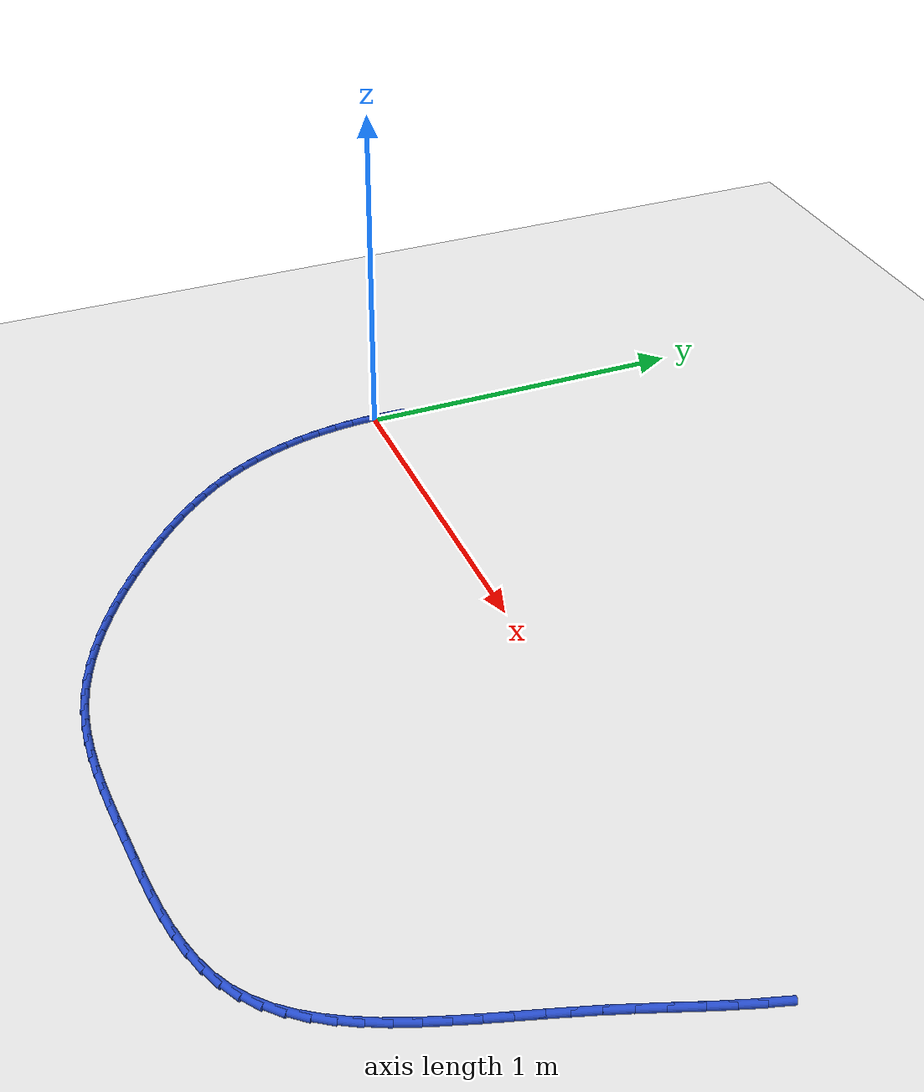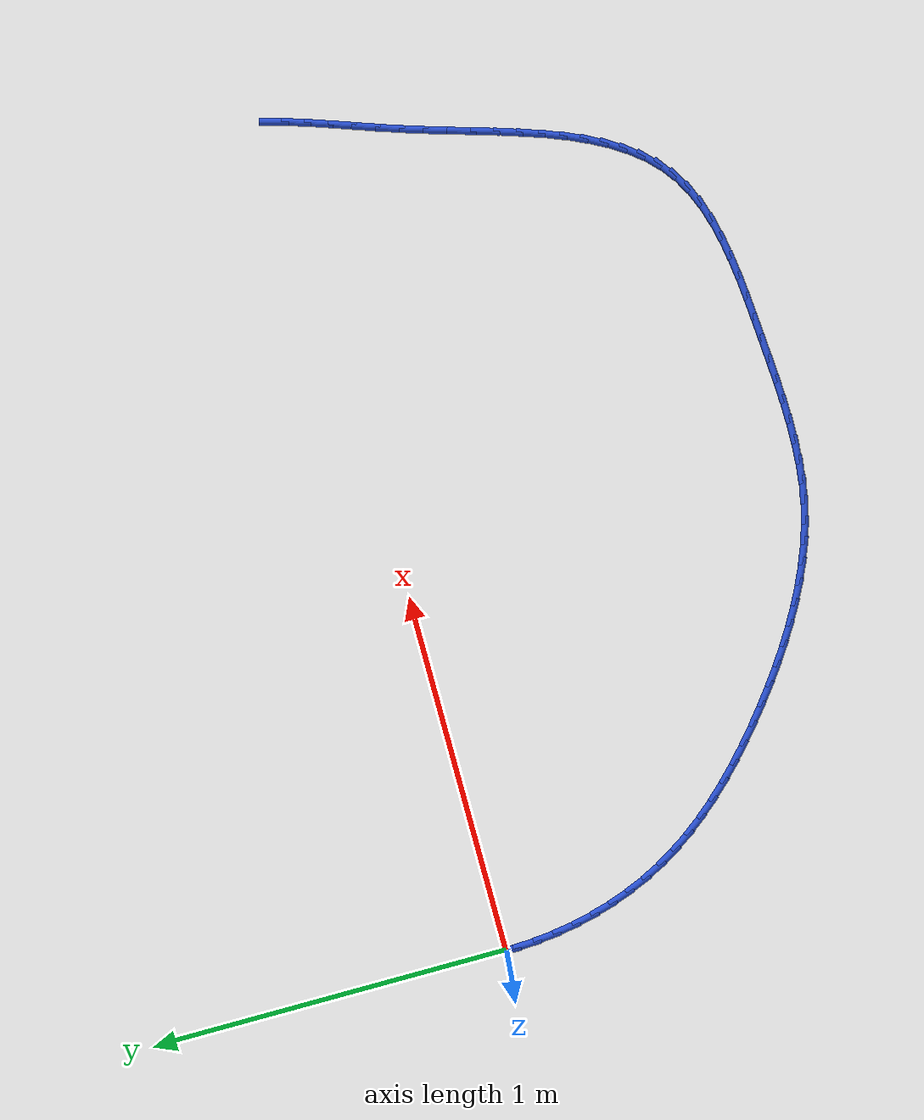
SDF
<sdf version="1.6">
 <world name="default">
  <model name="ground_plane">
   <static>1</static>
   <link name="link">
    <collision name="collision">
     <geometry><plane><normal>0 0 1</normal><size>100 100</size></plane></geometry>
     <surface><friction><ode><mu>100</mu><mu2>50</mu2></ode></friction></surface>
    </collision>
    <visual name="visual">
     <cast_shadows>0</cast_shadows>
     <geometry><plane><normal>0 0 1</normal><size>100 100</size></plane></geometry>
     <material>
      <script><uri>file://media/materials/scripts/gazebo.material</uri><name>Gazebo/WhiteGlow</name></script>
     </material>
    </visual>
   </link>
  </model>
  <model name="line">
   <link name="link_0">
    <pose>-3.8163916471489756e-17 -4.163336342344337e-17 0.01 0 1.57 1.5507426402267968</pose>
    <collision name="collision">
     <geometry><cylinder><radius>0.01</radius><length>0.08</length></cylinder></geometry>
    </collision>
    <visual name="visual">
     <material>
      <script><name>Gazebo/Blue</name><uri>file://media/materials/scripts/gazebo.material</uri></script>
     </material>
     <geometry><cylinder><radius>0.01</radius><length>0.08</length></cylinder></geometry>
    </visual>
   </link>
   <link name="link_67">
    <pose>2.3480346581451306 0.010561521279453537 0.01 0 1.57 1.282617856456668</pose>
    <collision name="collision">
     <geometry><cylinder><radius>0.01</radius><length>0.08</length></cylinder></geometry>
    </collision>
    <visual name="visual">
     <material>
      <script><name>Gazebo/Blue</name><uri>file://media/materials/scripts/gazebo.material</uri></script>
     </material>
     <geometry><cylinder><radius>0.01</radius><length>0.08</length></cylinder></geometry>
    </visual>
   </link>
   <link name="link_68">
    <pose>2.330881250224446 -0.047305093757457714 0.01 0 1.57 1.2523065538104043</pose>
    <collision name="collision">
     <geometry><cylinder><radius>0.01</radius><length>0.08</length></cylinder></geometry>
    </collision>
    <visual name="visual">
     <material>
      <script><name>Gazebo/Blue</name><uri>file://media/materials/scripts/gazebo.material</uri></script>
     </material>
     <geometry><cylinder><radius>0.01</radius><length>0.08</length></cylinder></geometry>
    </visual>
   </link>
   <link name="link_69">
    <pose>2.31136593727821 -0.10649367310155125 0.01 0 1.57 1.2350952243983047</pose>
    <collision name="collision">
     <geometry><cylinder><radius>0.01</radius><length>0.08</length></cylinder></geometry>
    </collision>
    <visual name="visual">
     <material>
      <script><name>Gazebo/Blue</name><uri>file://media/materials/scripts/gazebo.material</uri></script>
     </material>
     <geometry><cylinder><radius>0.01</radius><length>0.08</length></cylinder></geometry>
    </visual>
   </link>
   <link name="link_70">
    <pose>2.290332042961865 -0.16677871102707698 0.01 0 1.57 1.22969191194665</pose>
    <collision name="collision">
     <geometry><cylinder><radius>0.01</radius><length>0.08</length></cylinder></geometry>
    </collision>
    <visual name="visual">
     <material>
      <script><name>Gazebo/Blue</name><uri>file://media/materials/scripts/gazebo.material</uri></script>
     </material>
     <geometry><cylinder><radius>0.01</radius><length>0.08</length></cylinder></geometry>
    </visual>
   </link>
   <link name="link_71">
    <pose>2.268622890930848 -0.22793470180828226 0.01 0 1.57 1.2354110383310426</pose>
    <collision name="collision">
     <geometry><cylinder><radius>0.01</radius><length>0.08</length></cylinder></geometry>
    </collision>
    <visual name="visual">
     <material>
      <script><name>Gazebo/Blue</name><uri>file://media/materials/scripts/gazebo.material</uri></script>
     </material>
     <geometry><cylinder><radius>0.01</radius><length>0.08</length></cylinder></geometry>
    </visual>
   </link>
   <link name="link_72">
    <pose>2.247081804840598 -0.2897361397194169 0.01 0 1.57 1.251639813310058</pose>
    <collision name="collision">
     <geometry><cylinder><radius>0.01</radius><length>0.08</length></cylinder></geometry>
    </collision>
    <visual name="visual">
     <material>
      <script><name>Gazebo/Blue</name><uri>file://media/materials/scripts/gazebo.material</uri></script>
     </material>
     <geometry><cylinder><radius>0.01</radius><length>0.08</length></cylinder></geometry>
    </visual>
   </link>
   <link name="link_73">
    <pose>2.226522069818589 -0.3519528569142806 0.01 0 1.57 1.268890830604126</pose>
    <collision name="collision">
     <geometry><cylinder><radius>0.01</radius><length>0.08</length></cylinder></geometry>
    </collision>
    <visual name="visual">
     <material>
      <script><name>Gazebo/Blue</name><uri>file://media/materials/scripts/gazebo.material</uri></script>
     </material>
     <geometry><cylinder><radius>0.01</radius><length>0.08</length></cylinder></geometry>
    </visual>
   </link>
   <link name="link_74">
    <pose>2.207119378528228 -0.41425572820532996 0.01 0 1.57 1.2780123756928239</pose>
    <collision name="collision">
     <geometry><cylinder><radius>0.01</radius><length>0.08</length></cylinder></geometry>
    </collision>
    <visual name="visual">
     <material>
      <script><name>Gazebo/Blue</name><uri>file://media/materials/scripts/gazebo.material</uri></script>
     </material>
     <geometry><cylinder><radius>0.01</radius><length>0.08</length></cylinder></geometry>
    </visual>
   </link>
   <link name="link_75">
    <pose>2.188440104381289 -0.4762210591988785 0.01 0 1.57 1.2785336794585689</pose>
    <collision name="collision">
     <geometry><cylinder><radius>0.01</radius><length>0.08</length></cylinder></geometry>
    </collision>
    <visual name="visual">
     <material>
      <script><name>Gazebo/Blue</name><uri>file://media/materials/scripts/gazebo.material</uri></script>
     </material>
     <geometry><cylinder><radius>0.01</radius><length>0.08</length></cylinder></geometry>
    </visual>
   </link>
   <link name="link_76">
    <pose>2.1700262405510493 -0.5374213715738559 0.01 0 1.57 1.2701292731709128</pose>
    <collision name="collision">
     <geometry><cylinder><radius>0.01</radius><length>0.08</length></cylinder></geometry>
    </collision>
    <visual name="visual">
     <material>
      <script><name>Gazebo/Blue</name><uri>file://media/materials/scripts/gazebo.material</uri></script>
     </material>
     <geometry><cylinder><radius>0.01</radius><length>0.08</length></cylinder></geometry>
    </visual>
   </link>
   <link name="link_77">
    <pose>2.15141978021079 -0.5974291870091943 0.01 0 1.57 1.2522174894176923</pose>
    <collision name="collision">
     <geometry><cylinder><radius>0.01</radius><length>0.08</length></cylinder></geometry>
    </collision>
    <visual name="visual">
     <material>
      <script><name>Gazebo/Blue</name><uri>file://media/materials/scripts/gazebo.material</uri></script>
     </material>
     <geometry><cylinder><radius>0.01</radius><length>0.08</length></cylinder></geometry>
    </visual>
   </link>
   <link name="link_78">
    <pose>2.1321627165337884 -0.6558170271838261 0.01 0 1.57 1.2239350768184623</pose>
    <collision name="collision">
     <geometry><cylinder><radius>0.01</radius><length>0.08</length></cylinder></geometry>
    </collision>
    <visual name="visual">
     <material>
      <script><name>Gazebo/Blue</name><uri>file://media/materials/scripts/gazebo.material</uri></script>
     </material>
     <geometry><cylinder><radius>0.01</radius><length>0.08</length></cylinder></geometry>
    </visual>
   </link>
   <link name="link_79">
    <pose>2.1117970426933246 -0.7121574137766808 0.01 0 1.57 1.1841259313940056</pose>
    <collision name="collision">
     <geometry><cylinder><radius>0.01</radius><length>0.08</length></cylinder></geometry>
    </collision>
    <visual name="visual">
     <material>
      <script><name>Gazebo/Blue</name><uri>file://media/materials/scripts/gazebo.material</uri></script>
     </material>
     <geometry><cylinder><radius>0.01</radius><length>0.08</length></cylinder></geometry>
    </visual>
   </link>
   <link name="link_80">
    <pose>2.089864751862678 -0.766022868466691 0.01 0 1.57 1.131366594185637</pose>
    <collision name="collision">
     <geometry><cylinder><radius>0.01</radius><length>0.08</length></cylinder></geometry>
    </collision>
    <visual name="visual">
     <material>
      <script><name>Gazebo/Blue</name><uri>file://media/materials/scripts/gazebo.material</uri></script>
     </material>
     <geometry><cylinder><radius>0.01</radius><length>0.08</length></cylinder></geometry>
    </visual>
   </link>
   <link name="link_81">
    <pose>2.0659078372151267 -0.8169859129327879 0.01 0 1.57 1.0640719950239452</pose>
    <collision name="collision">
     <geometry><cylinder><radius>0.01</radius><length>0.08</length></cylinder></geometry>
    </collision>
    <visual name="visual">
     <material>
      <script><name>Gazebo/Blue</name><uri>file://media/materials/scripts/gazebo.material</uri></script>
     </material>
     <geometry><cylinder><radius>0.01</radius><length>0.08</length></cylinder></geometry>
    </visual>
   </link>
   <link name="link_82">
    <pose>2.03946829192395 -0.8646190688539029 0.01 0 1.57 0.9807506838783492</pose>
    <collision name="collision">
     <geometry><cylinder><radius>0.01</radius><length>0.08</length></cylinder></geometry>
    </collision>
    <visual name="visual">
     <material>
      <script><name>Gazebo/Blue</name><uri>file://media/materials/scripts/gazebo.material</uri></script>
     </material>
     <geometry><cylinder><radius>0.01</radius><length>0.08</length></cylinder></geometry>
    </visual>
   </link>
   <link name="link_83">
    <pose>2.0100881091624263 -0.908494857908968 0.01 0 1.57 0.8804898141448426</pose>
    <collision name="collision">
     <geometry><cylinder><radius>0.01</radius><length>0.08</length></cylinder></geometry>
    </collision>
    <visual name="visual">
     <material>
      <script><name>Gazebo/Blue</name><uri>file://media/materials/scripts/gazebo.material</uri></script>
     </material>
     <geometry><cylinder><radius>0.01</radius><length>0.08</length></cylinder></geometry>
    </visual>
   </link>
   <link name="link_84">
    <pose>1.9773092821038372 -0.948185801776914 0.01 0 1.57 0.7636923433998084</pose>
    <collision name="collision">
     <geometry><cylinder><radius>0.01</radius><length>0.08</length></cylinder></geometry>
    </collision>
    <visual name="visual">
     <material>
      <script><name>Gazebo/Blue</name><uri>file://media/materials/scripts/gazebo.material</uri></script>
     </material>
     <geometry><cylinder><radius>0.01</radius><length>0.08</length></cylinder></geometry>
    </visual>
   </link>
   <link name="link_85">
    <pose>1.9406738039214584 -0.9832644221366721 0.01 0 1.57 0.6328872740789407</pose>
    <collision name="collision">
     <geometry><cylinder><radius>0.01</radius><length>0.08</length></cylinder></geometry>
    </collision>
    <visual name="visual">
     <material>
      <script><name>Gazebo/Blue</name><uri>file://media/materials/scripts/gazebo.material</uri></script>
     </material>
     <geometry><cylinder><radius>0.01</radius><length>0.08</length></cylinder></geometry>
    </visual>
   </link>
   <link name="link_86">
    <pose>1.8997236677885705 -1.0133032406671747 0.01 0 1.57 0.4970385546555453</pose>
    <collision name="collision">
     <geometry><cylinder><radius>0.01</radius><length>0.08</length></cylinder></geometry>
    </collision>
    <visual name="visual">
     <material>
      <script><name>Gazebo/Blue</name><uri>file://media/materials/scripts/gazebo.material</uri></script>
     </material>
     <geometry><cylinder><radius>0.01</radius><length>0.08</length></cylinder></geometry>
    </visual>
   </link>
   <link name="link_87">
    <pose>1.8541545255872915 -1.0380228330083174 0.01 0 1.57 0.3796308341414466</pose>
    <collision name="collision">
     <geometry><cylinder><radius>0.01</radius><length>0.08</length></cylinder></geometry>
    </collision>
    <visual name="visual">
     <material>
      <script><name>Gazebo/Blue</name><uri>file://media/materials/scripts/gazebo.material</uri></script>
     </material>
     <geometry><cylinder><radius>0.01</radius><length>0.08</length></cylinder></geometry>
    </visual>
   </link>
   <link name="link_88">
    <pose>1.8044141656620658 -1.05786847685741 0.01 0 1.57 0.285728042936605</pose>
    <collision name="collision">
     <geometry><cylinder><radius>0.01</radius><length>0.08</length></cylinder></geometry>
    </collision>
    <visual name="visual">
     <material>
      <script><name>Gazebo/Blue</name><uri>file://media/materials/scripts/gazebo.material</uri></script>
     </material>
     <geometry><cylinder><radius>0.01</radius><length>0.08</length></cylinder></geometry>
    </visual>
   </link>
   <link name="link_89">
    <pose>1.7511801456265401 -1.0735068382773831 0.01 0 1.57 0.2125781255456815</pose>
    <collision name="collision">
     <geometry><cylinder><radius>0.01</radius><length>0.08</length></cylinder></geometry>
    </collision>
    <visual name="visual">
     <material>
      <script><name>Gazebo/Blue</name><uri>file://media/materials/scripts/gazebo.material</uri></script>
     </material>
     <geometry><cylinder><radius>0.01</radius><length>0.08</length></cylinder></geometry>
    </visual>
   </link>
   <link name="link_90">
    <pose>1.69513008033102 -1.085604638480103 0.01 0 1.57 0.1572105286833833</pose>
    <collision name="collision">
     <geometry><cylinder><radius>0.01</radius><length>0.08</length></cylinder></geometry>
    </collision>
    <visual name="visual">
     <material>
      <script><name>Gazebo/Blue</name><uri>file://media/materials/scripts/gazebo.material</uri></script>
     </material>
     <geometry><cylinder><radius>0.01</radius><length>0.08</length></cylinder></geometry>
    </visual>
   </link>
   <link name="link_91">
    <pose>1.6369415846258097 -1.0948285986774355 0.01 0 1.57 0.11709676226920934</pose>
    <collision name="collision">
     <geometry><cylinder><radius>0.01</radius><length>0.08</length></cylinder></geometry>
    </collision>
    <visual name="visual">
     <material>
      <script><name>Gazebo/Blue</name><uri>file://media/materials/scripts/gazebo.material</uri></script>
     </material>
     <geometry><cylinder><radius>0.01</radius><length>0.08</length></cylinder></geometry>
    </visual>
   </link>
   <link name="link_92">
    <pose>1.5772922733612165 -1.101845440081246 0.01 0 1.57 0.09037397227678563</pose>
    <collision name="collision">
     <geometry><cylinder><radius>0.01</radius><length>0.08</length></cylinder></geometry>
    </collision>
    <visual name="visual">
     <material>
      <script><name>Gazebo/Blue</name><uri>file://media/materials/scripts/gazebo.material</uri></script>
     </material>
     <geometry><cylinder><radius>0.01</radius><length>0.08</length></cylinder></geometry>
    </visual>
   </link>
   <link name="link_93">
    <pose>1.5168597613875456 -1.1073218839034014 0.01 0 1.57 0.07588492499050033</pose>
    <collision name="collision">
     <geometry><cylinder><radius>0.01</radius><length>0.08</length></cylinder></geometry>
    </collision>
    <visual name="visual">
     <material>
      <script><name>Gazebo/Blue</name><uri>file://media/materials/scripts/gazebo.material</uri></script>
     </material>
     <geometry><cylinder><radius>0.01</radius><length>0.08</length></cylinder></geometry>
    </visual>
   </link>
   <link name="link_94">
    <pose>1.4563216635551006 -1.1119246513557663 0.01 0 1.57 0.07240214545061828</pose>
    <collision name="collision">
     <geometry><cylinder><radius>0.01</radius><length>0.08</length></cylinder></geometry>
    </collision>
    <visual name="visual">
     <material>
      <script><name>Gazebo/Blue</name><uri>file://media/materials/scripts/gazebo.material</uri></script>
     </material>
     <geometry><cylinder><radius>0.01</radius><length>0.08</length></cylinder></geometry>
    </visual>
   </link>
   <link name="link_95">
    <pose>1.3963280225317296 -1.1162759255666574 0.01 0 1.57 0.06910570956560247</pose>
    <collision name="collision">
     <geometry><cylinder><radius>0.01</radius><length>0.08</length></cylinder></geometry>
    </collision>
    <visual name="visual">
     <material>
      <script><name>Gazebo/Blue</name><uri>file://media/materials/scripts/gazebo.material</uri></script>
     </material>
     <geometry><cylinder><radius>0.01</radius><length>0.08</length></cylinder></geometry>
    </visual>
   </link>
   <link name="link_96">
    <pose>1.3371417569233648 -1.1203725578162986 0.01 0 1.57 0.05777058107400581</pose>
    <collision name="collision">
     <geometry><cylinder><radius>0.01</radius><length>0.08</length></cylinder></geometry>
    </collision>
    <visual name="visual">
     <material>
      <script><name>Gazebo/Blue</name><uri>file://media/materials/scripts/gazebo.material</uri></script>
     </material>
     <geometry><cylinder><radius>0.01</radius><length>0.08</length></cylinder></geometry>
    </visual>
   </link>
   <link name="link_97">
    <pose>1.2787402731216313 -1.123750203871143 0.01 0 1.57 0.03786073664523429</pose>
    <collision name="collision">
     <geometry><cylinder><radius>0.01</radius><length>0.08</length></cylinder></geometry>
    </collision>
    <visual name="visual">
     <material>
      <script><name>Gazebo/Blue</name><uri>file://media/materials/scripts/gazebo.material</uri></script>
     </material>
     <geometry><cylinder><radius>0.01</radius><length>0.08</length></cylinder></geometry>
    </visual>
   </link>
   <link name="link_98">
    <pose>1.2210943200735678 -1.125933765549397 0.01 0 1.57 0.009036684293130188</pose>
    <collision name="collision">
     <geometry><cylinder><radius>0.01</radius><length>0.08</length></cylinder></geometry>
    </collision>
    <visual name="visual">
     <material>
      <script><name>Gazebo/Blue</name><uri>file://media/materials/scripts/gazebo.material</uri></script>
     </material>
     <geometry><cylinder><radius>0.01</radius><length>0.08</length></cylinder></geometry>
    </visual>
   </link>
   <link name="link_99">
    <pose>1.16417464672621 -1.1264481446692662 0.01 0 1.57 -0.028982009907625953</pose>
    <collision name="collision">
     <geometry><cylinder><radius>0.01</radius><length>0.08</length></cylinder></geometry>
    </collision>
    <visual name="visual">
     <material>
      <script><name>Gazebo/Blue</name><uri>file://media/materials/scripts/gazebo.material</uri></script>
     </material>
     <geometry><cylinder><radius>0.01</radius><length>0.08</length></cylinder></geometry>
    </visual>
   </link>
   <link name="link_100">
    <pose>1.1079520020265987 -1.1248182430489564 0.01 0 1.57 -0.07633935688201351</pose>
    <collision name="collision">
     <geometry><cylinder><radius>0.01</radius><length>0.08</length></cylinder></geometry>
    </collision>
    <visual name="visual">
     <material>
      <script><name>Gazebo/Blue</name><uri>file://media/materials/scripts/gazebo.material</uri></script>
     </material>
     <geometry><cylinder><radius>0.01</radius><length>0.08</length></cylinder></geometry>
    </visual>
   </link>
   <link name="link_101">
    <pose>1.052397134921771 -1.1205689625066735 0.01 0 1.57 -0.1329375902093642</pose>
    <collision name="collision">
     <geometry><cylinder><radius>0.01</radius><length>0.08</length></cylinder></geometry>
    </collision>
    <visual name="visual">
     <material>
      <script><name>Gazebo/Blue</name><uri>file://media/materials/scripts/gazebo.material</uri></script>
     </material>
     <geometry><cylinder><radius>0.01</radius><length>0.08</length></cylinder></geometry>
    </visual>
   </link>
   <link name="link_102">
    <pose>0.9974807943587636 -1.1132252048606237 0.01 0 1.57 -0.19824073081018273</pose>
    <collision name="collision">
     <geometry><cylinder><radius>0.01</radius><length>0.08</length></cylinder></geometry>
    </collision>
    <visual name="visual">
     <material>
      <script><name>Gazebo/Blue</name><uri>file://media/materials/scripts/gazebo.material</uri></script>
     </material>
     <geometry><cylinder><radius>0.01</radius><length>0.08</length></cylinder></geometry>
    </visual>
   </link>
   <link name="link_103">
    <pose>0.9431741603005644 -1.102316135641857 0.01 0 1.57 -0.2667039501905822</pose>
    <collision name="collision">
     <geometry><cylinder><radius>0.01</radius><length>0.08</length></cylinder></geometry>
    </collision>
    <visual name="visual">
     <material>
      <script><name>Gazebo/Blue</name><uri>file://media/materials/scripts/gazebo.material</uri></script>
     </material>
     <geometry><cylinder><radius>0.01</radius><length>0.08</length></cylinder></geometry>
    </visual>
   </link>
   <link name="link_104">
    <pose>0.8894761338996335 -1.087645145017893 0.01 0 1.57 -0.3304017387294075</pose>
    <collision name="collision">
     <geometry><cylinder><radius>0.01</radius><length>0.08</length></cylinder></geometry>
    </collision>
    <visual name="visual">
     <material>
      <script><name>Gazebo/Blue</name><uri>file://media/materials/scripts/gazebo.material</uri></script>
     </material>
     <geometry><cylinder><radius>0.01</radius><length>0.08</length></cylinder></geometry>
    </visual>
   </link>
   <link name="link_105">
    <pose>0.8364296893559856 -1.069451604283767 0.01 0 1.57 -0.3886922839778396</pose>
    <collision name="collision">
     <geometry><cylinder><radius>0.01</radius><length>0.08</length></cylinder></geometry>
    </collision>
    <visual name="visual">
     <material>
      <script><name>Gazebo/Blue</name><uri>file://media/materials/scripts/gazebo.material</uri></script>
     </material>
     <geometry><cylinder><radius>0.01</radius><length>0.08</length></cylinder></geometry>
    </visual>
   </link>
   <link name="link_106">
    <pose>0.7840817242811291 -1.0480136960593915 0.01 0 1.57 -0.44175299828991105</pose>
    <collision name="collision">
     <geometry><cylinder><radius>0.01</radius><length>0.08</length></cylinder></geometry>
    </collision>
    <visual name="visual">
     <material>
      <script><name>Gazebo/Blue</name><uri>file://media/materials/scripts/gazebo.material</uri></script>
     </material>
     <geometry><cylinder><radius>0.01</radius><length>0.08</length></cylinder></geometry>
    </visual>
   </link>
   <link name="link_107">
    <pose>0.7324791362865721 -1.0236096029646795 0.01 0 1.57 -0.48985407042968315</pose>
    <collision name="collision">
     <geometry><cylinder><radius>0.01</radius><length>0.08</length></cylinder></geometry>
    </collision>
    <visual name="visual">
     <material>
      <script><name>Gazebo/Blue</name><uri>file://media/materials/scripts/gazebo.material</uri></script>
     </material>
     <geometry><cylinder><radius>0.01</radius><length>0.08</length></cylinder></geometry>
    </visual>
   </link>
   <link name="link_108">
    <pose>0.6816688229838248 -0.9965175076195443 0.01 0 1.57 -0.5333152403753757</pose>
    <collision name="collision">
     <geometry><cylinder><radius>0.01</radius><length>0.08</length></cylinder></geometry>
    </collision>
    <visual name="visual">
     <material>
      <script><name>Gazebo/Blue</name><uri>file://media/materials/scripts/gazebo.material</uri></script>
     </material>
     <geometry><cylinder><radius>0.01</radius><length>0.08</length></cylinder></geometry>
    </visual>
   </link>
   <link name="link_109">
    <pose>0.6316976819843954 -0.967015592643899 0.01 0 1.57 -0.5724734974950213</pose>
    <collision name="collision">
     <geometry><cylinder><radius>0.01</radius><length>0.08</length></cylinder></geometry>
    </collision>
    <visual name="visual">
     <material>
      <script><name>Gazebo/Blue</name><uri>file://media/materials/scripts/gazebo.material</uri></script>
     </material>
     <geometry><cylinder><radius>0.01</radius><length>0.08</length></cylinder></geometry>
    </visual>
   </link>
   <link name="link_110">
    <pose>0.5826126108997914 -0.9353820406576553 0.01 0 1.57 -0.6076605054501492</pose>
    <collision name="collision">
     <geometry><cylinder><radius>0.01</radius><length>0.08</length></cylinder></geometry>
    </collision>
    <visual name="visual">
     <material>
      <script><name>Gazebo/Blue</name><uri>file://media/materials/scripts/gazebo.material</uri></script>
     </material>
     <geometry><cylinder><radius>0.01</radius><length>0.08</length></cylinder></geometry>
    </visual>
   </link>
   <link name="link_111">
    <pose>0.5344605073415234 -0.9018950342807275 0.01 0 1.57 -0.6391877394706942</pose>
    <collision name="collision">
     <geometry><cylinder><radius>0.01</radius><length>0.08</length></cylinder></geometry>
    </collision>
    <visual name="visual">
     <material>
      <script><name>Gazebo/Blue</name><uri>file://media/materials/scripts/gazebo.material</uri></script>
     </material>
     <geometry><cylinder><radius>0.01</radius><length>0.08</length></cylinder></geometry>
    </visual>
   </link>
   <link name="link_112">
    <pose>0.48728826892109917 -0.8668327561330278 0.01 0 1.57 -0.667337232595375</pose>
    <collision name="collision">
     <geometry><cylinder><radius>0.01</radius><length>0.08</length></cylinder></geometry>
    </collision>
    <visual name="visual">
     <material>
      <script><name>Gazebo/Blue</name><uri>file://media/materials/scripts/gazebo.material</uri></script>
     </material>
     <geometry><cylinder><radius>0.01</radius><length>0.08</length></cylinder></geometry>
    </visual>
   </link>
   <link name="link_113">
    <pose>0.44114279325002764 -0.8304733888344694 0.01 0 1.57 -0.6930037655890198</pose>
    <collision name="collision">
     <geometry><cylinder><radius>0.01</radius><length>0.08</length></cylinder></geometry>
    </collision>
    <visual name="visual">
     <material>
      <script><name>Gazebo/Blue</name><uri>file://media/materials/scripts/gazebo.material</uri></script>
     </material>
     <geometry><cylinder><radius>0.01</radius><length>0.08</length></cylinder></geometry>
    </visual>
   </link>
   <link name="link_114">
    <pose>0.39608902585560973 -0.793060806143797 0.01 0 1.57 -0.7212193511468055</pose>
    <collision name="collision">
     <geometry><cylinder><radius>0.01</radius><length>0.08</length></cylinder></geometry>
    </collision>
    <visual name="visual">
     <material>
      <script><name>Gazebo/Blue</name><uri>file://media/materials/scripts/gazebo.material</uri></script>
     </material>
     <geometry><cylinder><radius>0.01</radius><length>0.08</length></cylinder></geometry>
    </visual>
   </link>
   <link name="link_115">
    <pose>0.3523263001113379 -0.7545834122125937 0.01 0 1.57 -0.7543548193661713</pose>
    <collision name="collision">
     <geometry><cylinder><radius>0.01</radius><length>0.08</length></cylinder></geometry>
    </collision>
    <visual name="visual">
     <material>
      <script><name>Gazebo/Blue</name><uri>file://media/materials/scripts/gazebo.material</uri></script>
     </material>
     <geometry><cylinder><radius>0.01</radius><length>0.08</length></cylinder></geometry>
    </visual>
   </link>
   <link name="link_116">
    <pose>0.31011457693886213 -0.7149143589851249 0.01 0 1.57 -0.7926184035523761</pose>
    <collision name="collision">
     <geometry><cylinder><radius>0.01</radius><length>0.08</length></cylinder></geometry>
    </collision>
    <visual name="visual">
     <material>
      <script><name>Gazebo/Blue</name><uri>file://media/materials/scripts/gazebo.material</uri></script>
     </material>
     <geometry><cylinder><radius>0.01</radius><length>0.08</length></cylinder></geometry>
    </visual>
   </link>
   <link name="link_117">
    <pose>0.2697141117959508 -0.6739262384961893 0.01 0 1.57 -0.8361898016919611</pose>
    <collision name="collision">
     <geometry><cylinder><radius>0.01</radius><length>0.08</length></cylinder></geometry>
    </collision>
    <visual name="visual">
     <material>
      <script><name>Gazebo/Blue</name><uri>file://media/materials/scripts/gazebo.material</uri></script>
     </material>
     <geometry><cylinder><radius>0.01</radius><length>0.08</length></cylinder></geometry>
    </visual>
   </link>
   <link name="link_118">
    <pose>0.23138516014037244 -0.6314916427805856 0.01 0 1.57 -0.88519960219251</pose>
    <collision name="collision">
     <geometry><cylinder><radius>0.01</radius><length>0.08</length></cylinder></geometry>
    </collision>
    <visual name="visual">
     <material>
      <script><name>Gazebo/Blue</name><uri>file://media/materials/scripts/gazebo.material</uri></script>
     </material>
     <geometry><cylinder><radius>0.01</radius><length>0.08</length></cylinder></geometry>
    </visual>
   </link>
   <link name="link_119">
    <pose>0.19538797742989722 -0.5874831638731142 0.01 0 1.57 -0.9396903453968765</pose>
    <collision name="collision">
     <geometry><cylinder><radius>0.01</radius><length>0.08</length></cylinder></geometry>
    </collision>
    <visual name="visual">
     <material>
      <script><name>Gazebo/Blue</name><uri>file://media/materials/scripts/gazebo.material</uri></script>
     </material>
     <geometry><cylinder><radius>0.01</radius><length>0.08</length></cylinder></geometry>
    </visual>
   </link>
   <link name="link_120">
    <pose>0.1619828191222938 -0.5417733938085743 0.01 0 1.57 -0.9995714708774518</pose>
    <collision name="collision">
     <geometry><cylinder><radius>0.01</radius><length>0.08</length></cylinder></geometry>
    </collision>
    <visual name="visual">
     <material>
      <script><name>Gazebo/Blue</name><uri>file://media/materials/scripts/gazebo.material</uri></script>
     </material>
     <geometry><cylinder><radius>0.01</radius><length>0.08</length></cylinder></geometry>
    </visual>
   </link>
   <link name="link_121">
    <pose>0.13142994067533115 -0.4942349246217649 0.01 0 1.57 -1.0644929722090808</pose>
    <collision name="collision">
     <geometry><cylinder><radius>0.01</radius><length>0.08</length></cylinder></geometry>
    </collision>
    <visual name="visual">
     <material>
      <script><name>Gazebo/Blue</name><uri>file://media/materials/scripts/gazebo.material</uri></script>
     </material>
     <geometry><cylinder><radius>0.01</radius><length>0.08</length></cylinder></geometry>
    </visual>
   </link>
   <link name="link_122">
    <pose>0.10398662611041729 -0.44474430241351337 0.01 0 1.57 -1.1309671815712008</pose>
    <collision name="collision">
     <geometry><cylinder><radius>0.01</radius><length>0.08</length></cylinder></geometry>
    </collision>
    <visual name="visual">
     <material>
      <script><name>Gazebo/Blue</name><uri>file://media/materials/scripts/gazebo.material</uri></script>
     </material>
     <geometry><cylinder><radius>0.01</radius><length>0.08</length></cylinder></geometry>
    </visual>
   </link>
   <link name="link_123">
    <pose>0.07979384573965168 -0.3933328509849386 0.01 0 1.57 -1.1949560473798078</pose>
    <collision name="collision">
     <geometry><cylinder><radius>0.01</radius><length>0.08</length></cylinder></geometry>
    </collision>
    <visual name="visual">
     <material>
      <script><name>Gazebo/Blue</name><uri>file://media/materials/scripts/gazebo.material</uri></script>
     </material>
     <geometry><cylinder><radius>0.01</radius><length>0.08</length></cylinder></geometry>
    </visual>
   </link>
   <link name="link_124">
    <pose>0.058841010316505266 -0.3402335732004596 0.01 0 1.57 -1.2564322082683965</pose>
    <collision name="collision">
     <geometry><cylinder><radius>0.01</radius><length>0.08</length></cylinder></geometry>
    </collision>
    <visual name="visual">
     <material>
      <script><name>Gazebo/Blue</name><uri>file://media/materials/scripts/gazebo.material</uri></script>
     </material>
     <geometry><cylinder><radius>0.01</radius><length>0.08</length></cylinder></geometry>
    </visual>
   </link>
   <link name="link_125">
    <pose>0.04110735481102012 -0.28569301275615483 0.01 0 1.57 -1.3156878975455126</pose>
    <collision name="collision">
     <geometry><cylinder><radius>0.01</radius><length>0.08</length></cylinder></geometry>
    </collision>
    <visual name="visual">
     <material>
      <script><name>Gazebo/Blue</name><uri>file://media/materials/scripts/gazebo.material</uri></script>
     </material>
     <geometry><cylinder><radius>0.01</radius><length>0.08</length></cylinder></geometry>
    </visual>
   </link>
   <link name="link_126">
    <pose>0.026572114193238537 -0.22995771334810194 0.01 0 1.57 -1.3730463980285403</pose>
    <collision name="collision">
     <geometry><cylinder><radius>0.01</radius><length>0.08</length></cylinder></geometry>
    </collision>
    <visual name="visual">
     <material>
      <script><name>Gazebo/Blue</name><uri>file://media/materials/scripts/gazebo.material</uri></script>
     </material>
     <geometry><cylinder><radius>0.01</radius><length>0.08</length></cylinder></geometry>
    </visual>
   </link>
   <link name="link_127">
    <pose>0.015214523433203411 -0.1732742186723817 0.01 0 1.57 -1.4288509788598336</pose>
    <collision name="collision">
     <geometry><cylinder><radius>0.01</radius><length>0.08</length></cylinder></geometry>
    </collision>
    <visual name="visual">
     <material>
      <script><name>Gazebo/Blue</name><uri>file://media/materials/scripts/gazebo.material</uri></script>
     </material>
     <geometry><cylinder><radius>0.01</radius><length>0.08</length></cylinder></geometry>
    </visual>
   </link>
   <link name="link_128">
    <pose>0.0070138175009569715 -0.1158890724250721 0.01 0 1.57 -1.4834574661029678</pose>
    <collision name="collision">
     <geometry><cylinder><radius>0.01</radius><length>0.08</length></cylinder></geometry>
    </collision>
    <visual name="visual">
     <material>
      <script><name>Gazebo/Blue</name><uri>file://media/materials/scripts/gazebo.material</uri></script>
     </material>
     <geometry><cylinder><radius>0.01</radius><length>0.08</length></cylinder></geometry>
    </visual>
   </link>
   <link name="link_129">
    <pose>0.0019492313665416677 -0.05804881830225198 0.01 0 1.57 -1.5372297651822275</pose>
    <collision name="collision">
     <geometry><cylinder><radius>0.01</radius><length>0.08</length></cylinder></geometry>
    </collision>
    <visual name="visual">
     <material>
      <script><name>Gazebo/Blue</name><uri>file://media/materials/scripts/gazebo.material</uri></script>
     </material>
     <geometry><cylinder><radius>0.01</radius><length>0.08</length></cylinder></geometry>
    </visual>
   </link>
   <link name="link_130">
    <pose>-2.2551405187698492e-17 -2.636779683484747e-16 0.01 0 1.57 1.5510550232359306</pose>
    <collision name="collision">
     <geometry><cylinder><radius>0.01</radius><length>0.08</length></cylinder></geometry>
    </collision>
    <visual name="visual">
     <material>
      <script><name>Gazebo/Blue</name><uri>file://media/materials/scripts/gazebo.material</uri></script>
     </material>
     <geometry><cylinder><radius>0.01</radius><length>0.08</length></cylinder></geometry>
    </visual>
   </link>
   <link name="link_131">
    <pose>0.0011453583713743661 0.058010838785604195 0.01 0 1.57 1.5510550232359304</pose>
    <collision name="collision">
     <geometry><cylinder><radius>0.01</radius><length>0.08</length></cylinder></geometry>
    </collision>
    <visual name="visual">
     <material>
      <script><name>Gazebo/Blue</name><uri>file://media/materials/scripts/gazebo.material</uri></script>
     </material>
     <geometry><cylinder><radius>0.01</radius><length>0.08</length></cylinder></geometry>
    </visual>
   </link>
  </model>
 </world>
</sdf>
